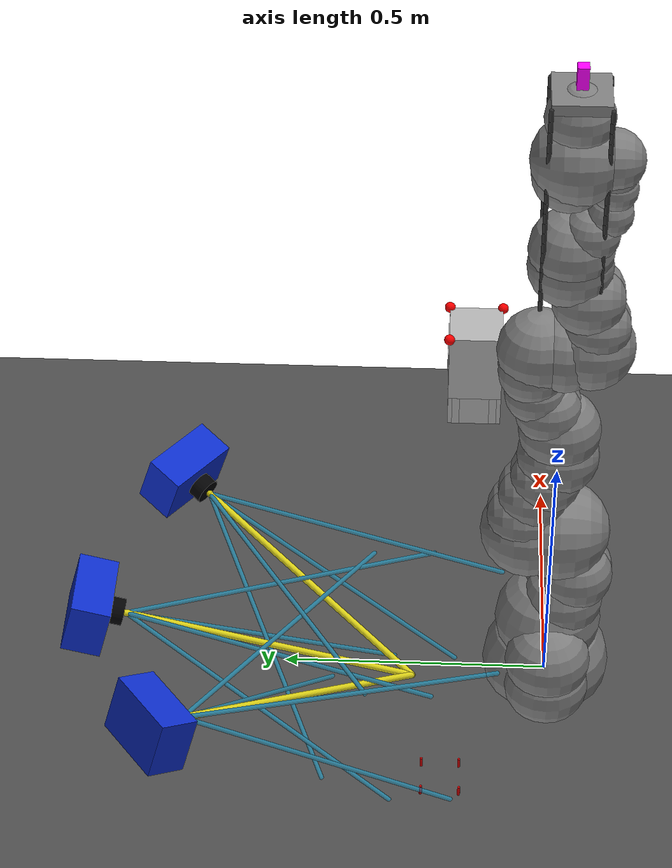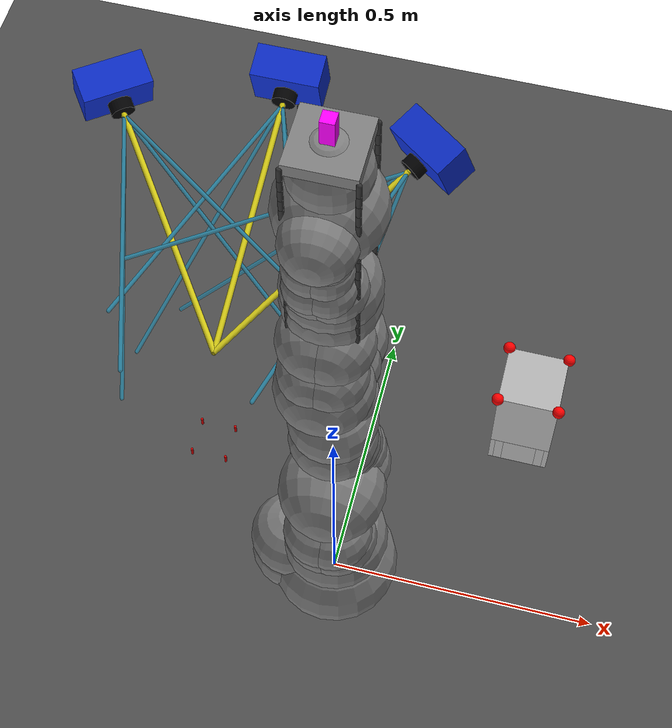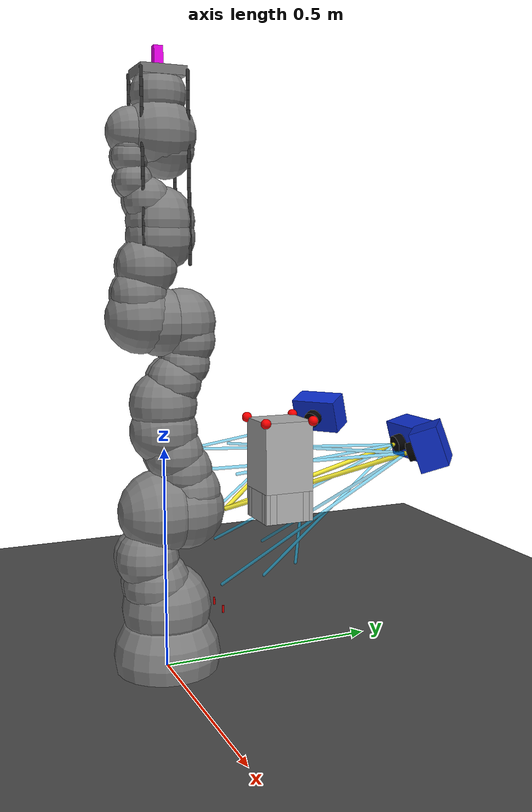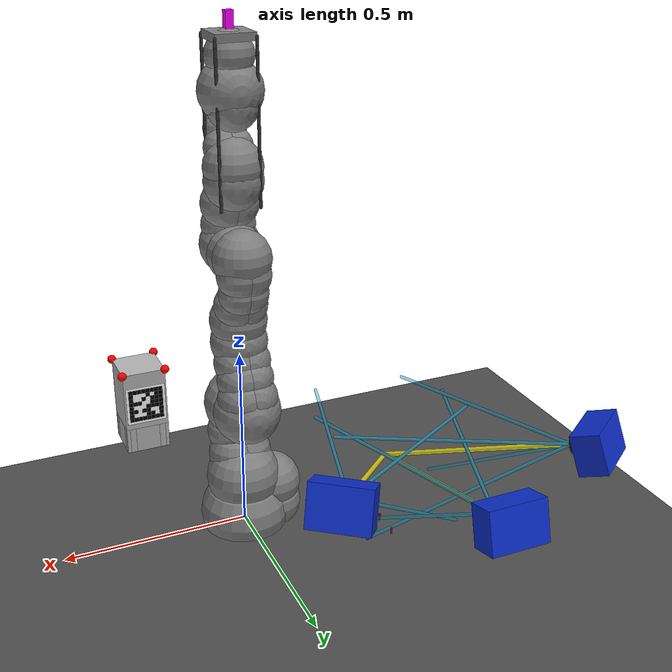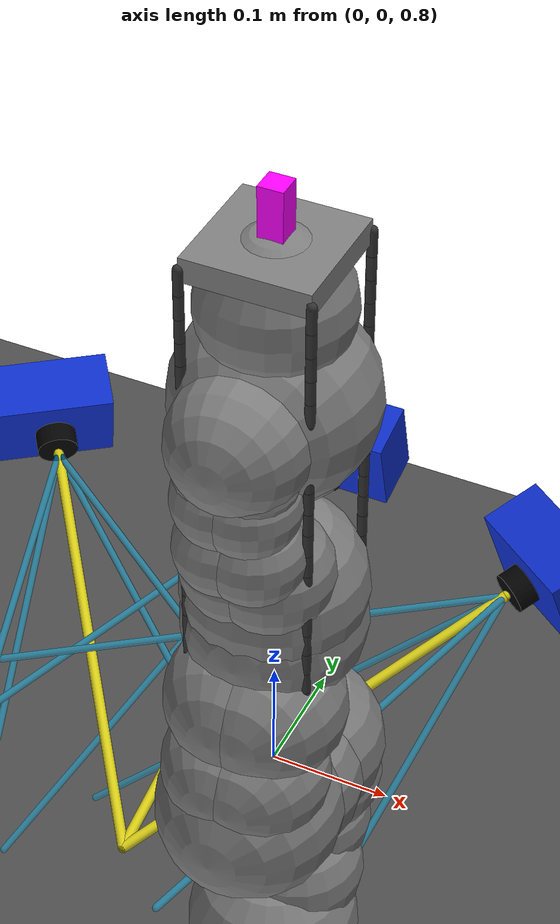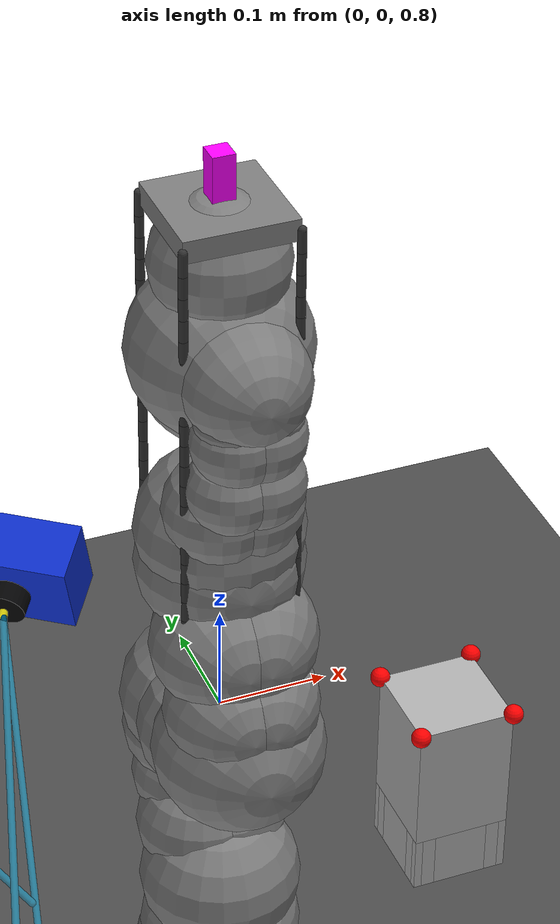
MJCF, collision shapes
<mujoco model="iiwa14_lifting_scene_sensors_compatible">

  <!-- arm + plate + ropes -->
  <include file="iiwa14_four_cables_with_plate.xml"/>

  <option integrator="implicitfast" gravity="0 0 -9.81"/>

  <asset>
    <material name="groundplane" rgba="0.3 0.3 0.3 1"/>
    <material name="concrete" rgba="0.7 0.7 0.7 1.0"/>
    <material name="target_mat" rgba="0.8 0.0 0.0 0.4"/>

    <!-- OpenCV vision marker assets -->
    <texture name="vision_marker_23_tex" type="2d" file="vision_marker_23.png"/>
    <material name="vision_marker_23_mat" texture="vision_marker_23_tex" texrepeat="1 1" texuniform="true" rgba="1 1 1 1"/>
    <material name="vision_marker_23_white_mat" rgba="1 1 1 1"/>
    <material name="vision_marker_23_black_mat" rgba="0 0 0 1"/>
    <!-- /OpenCV vision marker assets -->
    <material name="obstacle" rgba="0.9 0.45 0.1 1"/>
  </asset>

  <worldbody>
    <!-- lighting & ground -->
    <light pos="1.5 0 1.5" dir="1 0 -1" directional="true"/>
    <geom name="floor" size="0 0 0.05" type="plane" material="groundplane"/>

    <!-- RGB-D vision cameras -->
    <camera name="rgbd_front" pos="-0.3 0.82 0.42" quat="-0.000000 0.000000 0.610192 0.792253" fovy="52.000"/>
    <camera name="rgbd_left" pos="-0.62 0.68 0.46" quat="-0.257780 -0.181937 0.547176 0.775272" fovy="55.000"/>
    <camera name="rgbd_right" pos="0.02 0.68 0.46" quat="0.257780 0.181937 0.547176 0.775272" fovy="58.000"/>
    <!-- /RGB-D vision cameras -->

    <!-- RGB-D visible camera bodies -->
    <body name="rgbd_front_body" pos="-0.300000 0.820000 0.420000" quat="-0.000000 0.000000 0.610192 0.792253">
      <geom name="rgbd_front_housing" type="box" size="0.070 0.050 0.035" rgba="0.050 0.180 0.800 1" group="1" contype="0" conaffinity="0"/>
      <geom name="rgbd_front_lens" type="cylinder" size="0.024 0.012" pos="0 0 -0.048" rgba="0.010 0.010 0.014 1" group="1" contype="0" conaffinity="0"/>
      <geom name="rgbd_front_axis" type="capsule" fromto="0 0 -0.065 0 0 -0.587473" size="0.006" rgba="1.000 0.950 0.100 0.85" group="1" contype="0" conaffinity="0"/>
      <geom name="rgbd_front_ray_tl" type="capsule" fromto="0 0 -0.065 0.180838 0.135629 -0.587473" size="0.004" rgba="0.000 0.750 1.000 0.45" group="1" contype="0" conaffinity="0"/>
      <geom name="rgbd_front_ray_tr" type="capsule" fromto="0 0 -0.065 0.180838 -0.135629 -0.587473" size="0.004" rgba="0.000 0.750 1.000 0.45" group="1" contype="0" conaffinity="0"/>
      <geom name="rgbd_front_ray_bl" type="capsule" fromto="0 0 -0.065 -0.180838 0.135629 -0.587473" size="0.004" rgba="0.000 0.750 1.000 0.45" group="1" contype="0" conaffinity="0"/>
      <geom name="rgbd_front_ray_br" type="capsule" fromto="0 0 -0.065 -0.180838 -0.135629 -0.587473" size="0.004" rgba="0.000 0.750 1.000 0.45" group="1" contype="0" conaffinity="0"/>
    </body>
    <body name="rgbd_left_body" pos="-0.620000 0.680000 0.460000" quat="-0.257780 -0.181937 0.547176 0.775272">
      <geom name="rgbd_left_housing" type="box" size="0.070 0.050 0.035" rgba="0.050 0.180 0.800 1" group="1" contype="0" conaffinity="0"/>
      <geom name="rgbd_left_lens" type="cylinder" size="0.024 0.012" pos="0 0 -0.048" rgba="0.010 0.010 0.014 1" group="1" contype="0" conaffinity="0"/>
      <geom name="rgbd_left_axis" type="capsule" fromto="0 0 -0.065 0 0 -0.567172" size="0.006" rgba="1.000 0.950 0.100 0.85" group="1" contype="0" conaffinity="0"/>
      <geom name="rgbd_left_ray_tl" type="capsule" fromto="0 0 -0.065 0.185048 0.138786 -0.567172" size="0.004" rgba="0.000 0.750 1.000 0.45" group="1" contype="0" conaffinity="0"/>
      <geom name="rgbd_left_ray_tr" type="capsule" fromto="0 0 -0.065 0.185048 -0.138786 -0.567172" size="0.004" rgba="0.000 0.750 1.000 0.45" group="1" contype="0" conaffinity="0"/>
      <geom name="rgbd_left_ray_bl" type="capsule" fromto="0 0 -0.065 -0.185048 0.138786 -0.567172" size="0.004" rgba="0.000 0.750 1.000 0.45" group="1" contype="0" conaffinity="0"/>
      <geom name="rgbd_left_ray_br" type="capsule" fromto="0 0 -0.065 -0.185048 -0.138786 -0.567172" size="0.004" rgba="0.000 0.750 1.000 0.45" group="1" contype="0" conaffinity="0"/>
    </body>
    <body name="rgbd_right_body" pos="0.020000 0.680000 0.460000" quat="0.257780 0.181937 0.547176 0.775272">
      <geom name="rgbd_right_housing" type="box" size="0.070 0.050 0.035" rgba="0.050 0.180 0.800 1" group="1" contype="0" conaffinity="0"/>
      <geom name="rgbd_right_lens" type="cylinder" size="0.024 0.012" pos="0 0 -0.048" rgba="0.010 0.010 0.014 1" group="1" contype="0" conaffinity="0"/>
      <geom name="rgbd_right_axis" type="capsule" fromto="0 0 -0.065 0 0 -0.567172" size="0.006" rgba="1.000 0.950 0.100 0.85" group="1" contype="0" conaffinity="0"/>
      <geom name="rgbd_right_ray_tl" type="capsule" fromto="0 0 -0.065 0.195574 0.146681 -0.567172" size="0.004" rgba="0.000 0.750 1.000 0.45" group="1" contype="0" conaffinity="0"/>
      <geom name="rgbd_right_ray_tr" type="capsule" fromto="0 0 -0.065 0.195574 -0.146681 -0.567172" size="0.004" rgba="0.000 0.750 1.000 0.45" group="1" contype="0" conaffinity="0"/>
      <geom name="rgbd_right_ray_bl" type="capsule" fromto="0 0 -0.065 -0.195574 0.146681 -0.567172" size="0.004" rgba="0.000 0.750 1.000 0.45" group="1" contype="0" conaffinity="0"/>
      <geom name="rgbd_right_ray_br" type="capsule" fromto="0 0 -0.065 -0.195574 -0.146681 -0.567172" size="0.004" rgba="0.000 0.750 1.000 0.45" group="1" contype="0" conaffinity="0"/>
    </body>
    <!-- /RGB-D visible camera bodies -->

    <!-- target: visual-only goal marker (no collision) -->
    <body name="target" pos="-0.30288580108722774 0.19655506420279442 0">
      <geom name="rebar_0" type="cylinder" size="0.0025 0.01" pos="0.035 0.035 0.01" rgba="0.8 0.0 0.0 1.0" contype="1" conaffinity="1"/>
      <geom name="rebar_1" type="cylinder" size="0.0025 0.01" pos="0.035 -0.035 0.01" rgba="0.8 0.0 0.0 1.0" contype="1" conaffinity="1"/>
      <geom name="rebar_2" type="cylinder" size="0.0025 0.01" pos="-0.035 0.035 0.01" rgba="0.8 0.0 0.0 1.0" contype="1" conaffinity="1"/>
      <geom name="rebar_3" type="cylinder" size="0.0025 0.01" pos="-0.035 -0.035 0.01" rgba="0.8 0.0 0.0 1.0" contype="1" conaffinity="1"/>
    </body>

    <!-- prefab: payload with free joint -->
    <body name="prefab" pos="0.3 0.15 0.5">
      <joint type="free"/>
      <geom name="socket_top" type="box" size="0.05 0.05 0.070000" pos="0 0 0.030000" material="concrete" mass="0.213636"/>
      <geom name="socket_b1" type="box" size="0.004000 0.004000 0.030000" pos="-0.046000 -0.046000 -0.070000" material="concrete" mass="0.213636"/>
      <geom name="socket_b2" type="box" size="0.004000 0.007000 0.030000" pos="-0.046000 -0.035000 -0.070000" material="concrete" mass="0.213636"/>
      <geom name="socket_b3" type="box" size="0.004000 0.028000 0.030000" pos="-0.046000 0.000000 -0.070000" material="concrete" mass="0.213636"/>
      <geom name="socket_b4" type="box" size="0.004000 0.007000 0.030000" pos="-0.046000 0.035000 -0.070000" material="concrete" mass="0.213636"/>
      <geom name="socket_b5" type="box" size="0.004000 0.004000 0.030000" pos="-0.046000 0.046000 -0.070000" material="concrete" mass="0.213636"/>
      <geom name="socket_b6" type="box" size="0.007000 0.004000 0.030000" pos="-0.035000 -0.046000 -0.070000" material="concrete" mass="0.213636"/>
      <geom name="socket_b7" type="box" size="0.007000 0.028000 0.030000" pos="-0.035000 0.000000 -0.070000" material="concrete" mass="0.213636"/>
      <geom name="socket_b8" type="box" size="0.007000 0.004000 0.030000" pos="-0.035000 0.046000 -0.070000" material="concrete" mass="0.213636"/>
      <geom name="socket_b9" type="box" size="0.028000 0.004000 0.030000" pos="0.000000 -0.046000 -0.070000" material="concrete" mass="0.213636"/>
      <geom name="socket_b10" type="box" size="0.028000 0.007000 0.030000" pos="0.000000 -0.035000 -0.070000" material="concrete" mass="0.213636"/>
      <geom name="socket_b11" type="box" size="0.028000 0.028000 0.030000" pos="0.000000 0.000000 -0.070000" material="concrete" mass="0.213636"/>
      <geom name="socket_b12" type="box" size="0.028000 0.007000 0.030000" pos="0.000000 0.035000 -0.070000" material="concrete" mass="0.213636"/>
      <geom name="socket_b13" type="box" size="0.028000 0.004000 0.030000" pos="0.000000 0.046000 -0.070000" material="concrete" mass="0.213636"/>
      <geom name="socket_b14" type="box" size="0.007000 0.004000 0.030000" pos="0.035000 -0.046000 -0.070000" material="concrete" mass="0.213636"/>
      <geom name="socket_b15" type="box" size="0.007000 0.028000 0.030000" pos="0.035000 0.000000 -0.070000" material="concrete" mass="0.213636"/>
      <geom name="socket_b16" type="box" size="0.007000 0.004000 0.030000" pos="0.035000 0.046000 -0.070000" material="concrete" mass="0.213636"/>
      <geom name="socket_b17" type="box" size="0.004000 0.004000 0.030000" pos="0.046000 -0.046000 -0.070000" material="concrete" mass="0.213636"/>
      <geom name="socket_b18" type="box" size="0.004000 0.007000 0.030000" pos="0.046000 -0.035000 -0.070000" material="concrete" mass="0.213636"/>
      <geom name="socket_b19" type="box" size="0.004000 0.028000 0.030000" pos="0.046000 0.000000 -0.070000" material="concrete" mass="0.213636"/>
      <geom name="socket_b20" type="box" size="0.004000 0.007000 0.030000" pos="0.046000 0.035000 -0.070000" material="concrete" mass="0.213636"/>
      <geom name="socket_b21" type="box" size="0.004000 0.004000 0.030000" pos="0.046000 0.046000 -0.070000" material="concrete" mass="0.213636"/>
      <geom name="vision_marker_23_board" type="box" size="0.046000 0.046000 0.000500" pos="0.000000 0.051500 0.020000" quat="0.000000 0.000000 0.707107 0.707107" material="vision_marker_23_white_mat" contype="0" conaffinity="0" mass="0.00000001"/>
      <geom name="vision_marker_23_blk_0_0" type="box" size="0.005000 0.005000 0.000120" pos="0.035000 0.052120 0.055000" quat="0.000000 0.000000 0.707107 0.707107" material="vision_marker_23_black_mat" contype="0" conaffinity="0" mass="0.00000001"/>
      <geom name="vision_marker_23_blk_0_1" type="box" size="0.005000 0.005000 0.000120" pos="0.025000 0.052120 0.055000" quat="0.000000 0.000000 0.707107 0.707107" material="vision_marker_23_black_mat" contype="0" conaffinity="0" mass="0.00000001"/>
      <geom name="vision_marker_23_blk_0_2" type="box" size="0.005000 0.005000 0.000120" pos="0.015000 0.052120 0.055000" quat="0.000000 0.000000 0.707107 0.707107" material="vision_marker_23_black_mat" contype="0" conaffinity="0" mass="0.00000001"/>
      <geom name="vision_marker_23_blk_0_3" type="box" size="0.005000 0.005000 0.000120" pos="0.005000 0.052120 0.055000" quat="0.000000 0.000000 0.707107 0.707107" material="vision_marker_23_black_mat" contype="0" conaffinity="0" mass="0.00000001"/>
      <geom name="vision_marker_23_blk_0_4" type="box" size="0.005000 0.005000 0.000120" pos="-0.005000 0.052120 0.055000" quat="0.000000 0.000000 0.707107 0.707107" material="vision_marker_23_black_mat" contype="0" conaffinity="0" mass="0.00000001"/>
      <geom name="vision_marker_23_blk_0_5" type="box" size="0.005000 0.005000 0.000120" pos="-0.015000 0.052120 0.055000" quat="0.000000 0.000000 0.707107 0.707107" material="vision_marker_23_black_mat" contype="0" conaffinity="0" mass="0.00000001"/>
      <geom name="vision_marker_23_blk_0_6" type="box" size="0.005000 0.005000 0.000120" pos="-0.025000 0.052120 0.055000" quat="0.000000 0.000000 0.707107 0.707107" material="vision_marker_23_black_mat" contype="0" conaffinity="0" mass="0.00000001"/>
      <geom name="vision_marker_23_blk_0_7" type="box" size="0.005000 0.005000 0.000120" pos="-0.035000 0.052120 0.055000" quat="0.000000 0.000000 0.707107 0.707107" material="vision_marker_23_black_mat" contype="0" conaffinity="0" mass="0.00000001"/>
      <geom name="vision_marker_23_blk_1_0" type="box" size="0.005000 0.005000 0.000120" pos="0.035000 0.052120 0.045000" quat="0.000000 0.000000 0.707107 0.707107" material="vision_marker_23_black_mat" contype="0" conaffinity="0" mass="0.00000001"/>
      <geom name="vision_marker_23_blk_1_4" type="box" size="0.005000 0.005000 0.000120" pos="-0.005000 0.052120 0.045000" quat="0.000000 0.000000 0.707107 0.707107" material="vision_marker_23_black_mat" contype="0" conaffinity="0" mass="0.00000001"/>
      <geom name="vision_marker_23_blk_1_6" type="box" size="0.005000 0.005000 0.000120" pos="-0.025000 0.052120 0.045000" quat="0.000000 0.000000 0.707107 0.707107" material="vision_marker_23_black_mat" contype="0" conaffinity="0" mass="0.00000001"/>
      <geom name="vision_marker_23_blk_1_7" type="box" size="0.005000 0.005000 0.000120" pos="-0.035000 0.052120 0.045000" quat="0.000000 0.000000 0.707107 0.707107" material="vision_marker_23_black_mat" contype="0" conaffinity="0" mass="0.00000001"/>
      <geom name="vision_marker_23_blk_2_0" type="box" size="0.005000 0.005000 0.000120" pos="0.035000 0.052120 0.035000" quat="0.000000 0.000000 0.707107 0.707107" material="vision_marker_23_black_mat" contype="0" conaffinity="0" mass="0.00000001"/>
      <geom name="vision_marker_23_blk_2_3" type="box" size="0.005000 0.005000 0.000120" pos="0.005000 0.052120 0.035000" quat="0.000000 0.000000 0.707107 0.707107" material="vision_marker_23_black_mat" contype="0" conaffinity="0" mass="0.00000001"/>
      <geom name="vision_marker_23_blk_2_5" type="box" size="0.005000 0.005000 0.000120" pos="-0.015000 0.052120 0.035000" quat="0.000000 0.000000 0.707107 0.707107" material="vision_marker_23_black_mat" contype="0" conaffinity="0" mass="0.00000001"/>
      <geom name="vision_marker_23_blk_2_6" type="box" size="0.005000 0.005000 0.000120" pos="-0.025000 0.052120 0.035000" quat="0.000000 0.000000 0.707107 0.707107" material="vision_marker_23_black_mat" contype="0" conaffinity="0" mass="0.00000001"/>
      <geom name="vision_marker_23_blk_2_7" type="box" size="0.005000 0.005000 0.000120" pos="-0.035000 0.052120 0.035000" quat="0.000000 0.000000 0.707107 0.707107" material="vision_marker_23_black_mat" contype="0" conaffinity="0" mass="0.00000001"/>
      <geom name="vision_marker_23_blk_3_0" type="box" size="0.005000 0.005000 0.000120" pos="0.035000 0.052120 0.025000" quat="0.000000 0.000000 0.707107 0.707107" material="vision_marker_23_black_mat" contype="0" conaffinity="0" mass="0.00000001"/>
      <geom name="vision_marker_23_blk_3_1" type="box" size="0.005000 0.005000 0.000120" pos="0.025000 0.052120 0.025000" quat="0.000000 0.000000 0.707107 0.707107" material="vision_marker_23_black_mat" contype="0" conaffinity="0" mass="0.00000001"/>
      <geom name="vision_marker_23_blk_3_2" type="box" size="0.005000 0.005000 0.000120" pos="0.015000 0.052120 0.025000" quat="0.000000 0.000000 0.707107 0.707107" material="vision_marker_23_black_mat" contype="0" conaffinity="0" mass="0.00000001"/>
      <geom name="vision_marker_23_blk_3_5" type="box" size="0.005000 0.005000 0.000120" pos="-0.015000 0.052120 0.025000" quat="0.000000 0.000000 0.707107 0.707107" material="vision_marker_23_black_mat" contype="0" conaffinity="0" mass="0.00000001"/>
      <geom name="vision_marker_23_blk_3_6" type="box" size="0.005000 0.005000 0.000120" pos="-0.025000 0.052120 0.025000" quat="0.000000 0.000000 0.707107 0.707107" material="vision_marker_23_black_mat" contype="0" conaffinity="0" mass="0.00000001"/>
      <geom name="vision_marker_23_blk_3_7" type="box" size="0.005000 0.005000 0.000120" pos="-0.035000 0.052120 0.025000" quat="0.000000 0.000000 0.707107 0.707107" material="vision_marker_23_black_mat" contype="0" conaffinity="0" mass="0.00000001"/>
      <geom name="vision_marker_23_blk_4_0" type="box" size="0.005000 0.005000 0.000120" pos="0.035000 0.052120 0.015000" quat="0.000000 0.000000 0.707107 0.707107" material="vision_marker_23_black_mat" contype="0" conaffinity="0" mass="0.00000001"/>
      <geom name="vision_marker_23_blk_4_4" type="box" size="0.005000 0.005000 0.000120" pos="-0.005000 0.052120 0.015000" quat="0.000000 0.000000 0.707107 0.707107" material="vision_marker_23_black_mat" contype="0" conaffinity="0" mass="0.00000001"/>
      <geom name="vision_marker_23_blk_4_5" type="box" size="0.005000 0.005000 0.000120" pos="-0.015000 0.052120 0.015000" quat="0.000000 0.000000 0.707107 0.707107" material="vision_marker_23_black_mat" contype="0" conaffinity="0" mass="0.00000001"/>
      <geom name="vision_marker_23_blk_4_6" type="box" size="0.005000 0.005000 0.000120" pos="-0.025000 0.052120 0.015000" quat="0.000000 0.000000 0.707107 0.707107" material="vision_marker_23_black_mat" contype="0" conaffinity="0" mass="0.00000001"/>
      <geom name="vision_marker_23_blk_4_7" type="box" size="0.005000 0.005000 0.000120" pos="-0.035000 0.052120 0.015000" quat="0.000000 0.000000 0.707107 0.707107" material="vision_marker_23_black_mat" contype="0" conaffinity="0" mass="0.00000001"/>
      <geom name="vision_marker_23_blk_5_0" type="box" size="0.005000 0.005000 0.000120" pos="0.035000 0.052120 0.005000" quat="0.000000 0.000000 0.707107 0.707107" material="vision_marker_23_black_mat" contype="0" conaffinity="0" mass="0.00000001"/>
      <geom name="vision_marker_23_blk_5_1" type="box" size="0.005000 0.005000 0.000120" pos="0.025000 0.052120 0.005000" quat="0.000000 0.000000 0.707107 0.707107" material="vision_marker_23_black_mat" contype="0" conaffinity="0" mass="0.00000001"/>
      <geom name="vision_marker_23_blk_5_3" type="box" size="0.005000 0.005000 0.000120" pos="0.005000 0.052120 0.005000" quat="0.000000 0.000000 0.707107 0.707107" material="vision_marker_23_black_mat" contype="0" conaffinity="0" mass="0.00000001"/>
      <geom name="vision_marker_23_blk_5_4" type="box" size="0.005000 0.005000 0.000120" pos="-0.005000 0.052120 0.005000" quat="0.000000 0.000000 0.707107 0.707107" material="vision_marker_23_black_mat" contype="0" conaffinity="0" mass="0.00000001"/>
      <geom name="vision_marker_23_blk_5_7" type="box" size="0.005000 0.005000 0.000120" pos="-0.035000 0.052120 0.005000" quat="0.000000 0.000000 0.707107 0.707107" material="vision_marker_23_black_mat" contype="0" conaffinity="0" mass="0.00000001"/>
      <geom name="vision_marker_23_blk_6_0" type="box" size="0.005000 0.005000 0.000120" pos="0.035000 0.052120 -0.005000" quat="0.000000 0.000000 0.707107 0.707107" material="vision_marker_23_black_mat" contype="0" conaffinity="0" mass="0.00000001"/>
      <geom name="vision_marker_23_blk_6_4" type="box" size="0.005000 0.005000 0.000120" pos="-0.005000 0.052120 -0.005000" quat="0.000000 0.000000 0.707107 0.707107" material="vision_marker_23_black_mat" contype="0" conaffinity="0" mass="0.00000001"/>
      <geom name="vision_marker_23_blk_6_5" type="box" size="0.005000 0.005000 0.000120" pos="-0.015000 0.052120 -0.005000" quat="0.000000 0.000000 0.707107 0.707107" material="vision_marker_23_black_mat" contype="0" conaffinity="0" mass="0.00000001"/>
      <geom name="vision_marker_23_blk_6_7" type="box" size="0.005000 0.005000 0.000120" pos="-0.035000 0.052120 -0.005000" quat="0.000000 0.000000 0.707107 0.707107" material="vision_marker_23_black_mat" contype="0" conaffinity="0" mass="0.00000001"/>
      <geom name="vision_marker_23_blk_7_0" type="box" size="0.005000 0.005000 0.000120" pos="0.035000 0.052120 -0.015000" quat="0.000000 0.000000 0.707107 0.707107" material="vision_marker_23_black_mat" contype="0" conaffinity="0" mass="0.00000001"/>
      <geom name="vision_marker_23_blk_7_1" type="box" size="0.005000 0.005000 0.000120" pos="0.025000 0.052120 -0.015000" quat="0.000000 0.000000 0.707107 0.707107" material="vision_marker_23_black_mat" contype="0" conaffinity="0" mass="0.00000001"/>
      <geom name="vision_marker_23_blk_7_2" type="box" size="0.005000 0.005000 0.000120" pos="0.015000 0.052120 -0.015000" quat="0.000000 0.000000 0.707107 0.707107" material="vision_marker_23_black_mat" contype="0" conaffinity="0" mass="0.00000001"/>
      <geom name="vision_marker_23_blk_7_3" type="box" size="0.005000 0.005000 0.000120" pos="0.005000 0.052120 -0.015000" quat="0.000000 0.000000 0.707107 0.707107" material="vision_marker_23_black_mat" contype="0" conaffinity="0" mass="0.00000001"/>
      <geom name="vision_marker_23_blk_7_4" type="box" size="0.005000 0.005000 0.000120" pos="-0.005000 0.052120 -0.015000" quat="0.000000 0.000000 0.707107 0.707107" material="vision_marker_23_black_mat" contype="0" conaffinity="0" mass="0.00000001"/>
      <geom name="vision_marker_23_blk_7_5" type="box" size="0.005000 0.005000 0.000120" pos="-0.015000 0.052120 -0.015000" quat="0.000000 0.000000 0.707107 0.707107" material="vision_marker_23_black_mat" contype="0" conaffinity="0" mass="0.00000001"/>
      <geom name="vision_marker_23_blk_7_6" type="box" size="0.005000 0.005000 0.000120" pos="-0.025000 0.052120 -0.015000" quat="0.000000 0.000000 0.707107 0.707107" material="vision_marker_23_black_mat" contype="0" conaffinity="0" mass="0.00000001"/>
      <geom name="vision_marker_23_blk_7_7" type="box" size="0.005000 0.005000 0.000120" pos="-0.035000 0.052120 -0.015000" quat="0.000000 0.000000 0.707107 0.707107" material="vision_marker_23_black_mat" contype="0" conaffinity="0" mass="0.00000001"/>

      <!-- four lift sites at top corners -->
      <site name="lift_fl" pos=" 0.05  0.05  0.1" size="0.01" rgba="1 0 0 1"/>
      <site name="lift_fr" pos=" 0.05 -0.05  0.1" size="0.01" rgba="1 0 0 1"/>
      <site name="lift_rl" pos="-0.05  0.05  0.1" size="0.01" rgba="1 0 0 1"/>
      <site name="lift_rr" pos="-0.05 -0.05  0.1" size="0.01" rgba="1 0 0 1"/>

      <!-- IMU sensor mount -->
      <site name="imu_site" pos="0 0 0" size="0.01" rgba="0 1 0 1"/>
    </body>
  </worldbody>

  <actuator>
    <position name="j1_motor" joint="joint1" ctrlrange="-2.96 2.96" forcerange="-300 300" kp="3000" kv="100"/>
    <position name="j2_motor" joint="joint2" ctrlrange="-2.09 2.09" forcerange="-300 300" kp="3000" kv="100"/>
    <position name="j3_motor" joint="joint3" ctrlrange="-2.96 2.96" forcerange="-300 300" kp="3000" kv="100"/>
    <position name="j4_motor" joint="joint4" ctrlrange="-2.09 2.09" forcerange="-300 300" kp="3000" kv="100"/>
    <position name="j5_motor" joint="joint5" ctrlrange="-2.96 2.96" forcerange="-300 300" kp="3000" kv="100"/>
    <position name="j6_motor" joint="joint6" ctrlrange="-2.09 2.09" forcerange="-300 300" kp="3000" kv="100"/>
    <position name="j7_motor" joint="joint7" ctrlrange="-3.05 3.05" forcerange="-300 300" kp="3000" kv="100"/>
  </actuator>

  <equality>
      <!-- rope ends to prefab lift sites (fl/rl swapped with fr/rr) -->
      <connect site1="rope_fl_end" site2="lift_fr"/>
      <connect site1="rope_fr_end" site2="lift_fl"/>
      <connect site1="rope_rl_end" site2="lift_rr"/>
      <connect site1="rope_rr_end" site2="lift_rl"/>
  </equality>

  <sensor>
    <framepos name="prefab/pos" objtype="site" objname="imu_site"/>
    <framelinvel name="prefab/vel" objtype="site" objname="imu_site"/>
    <framepos name="end/pos" objtype="site" objname="attachment_site"/>
    <framelinvel name="end/vel" objtype="site" objname="attachment_site"/>
  </sensor>

  <!-- Full nq vector: arm home + rope ball joints + prefab free joint -->
  <keyframe>
    <key name="home" qpos="-0.71972016 0.29057466 -1.10685585 1.53851657 2.87907443 1.73055121 -1.85194252 1 0 0 0 1 0 0 0 1 0 0 0 1 0 0 0 1 0 0 0 1 0 0 0 1 0 0 0 1 0 0 0 1 0 0 0 1 0 0 0 1 0 0 0 1 0 0 0 1 0 0 0 1 0 0 0 1 0 0 0 1 0 0 0 1 0 0 0 1 0 0 0 1 0 0 0 1 0 0 0 1 0 0 0 1 0 0 0 1 0 0 0 1 0 0 0 1 0 0 0 1 0 0 0 1 0 0 0 1 0 0 0 1 0 0 0 1 0 0 0 1 0 0 0 1 0 0 0 1 0 0 0 1 0 0 0 1 0 0 0 1 0 0 0 1 0 0 0 1 0 0 0 1 0 0 0 1 0 0 0 0.2 0.3 0.5 1 0 0 0"/>
  </keyframe>

</mujoco>

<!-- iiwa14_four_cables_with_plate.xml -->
<mujoco model="iiwa14">
  <compiler angle="radian" meshdir="assets" autolimits="true"/>
  <option integrator="implicitfast"/>

  <default>
    <default class="iiwa">
      <material specular="0.5" shininess="0.25"/>
      <joint axis="0 0 1" damping="1.2"/>
      <general gaintype="fixed" biastype="affine" gainprm="0" biasprm="0 -50 -5"/>
      <default class="joint1">
        <joint range="-2.96706 2.96706"/>
        <general ctrlrange="-2.96706 2.96706"/>
        <default class="joint2">
          <joint range="-2.0944 2.0944"/>
          <general ctrlrange="-2.0944 2.0944"/>
        </default>
      </default>
      <default class="joint3">
        <joint range="-3.05433 3.05433"/>
        <general ctrlrange="-3.05433 3.05433"/>
      </default>
      <default class="visual">
        <geom type="mesh" contype="0" conaffinity="0" group="2" material="gray"/>
      </default>
      <default class="collision">
        <geom group="3"/>
      </default>
      <site size="0.001" rgba="1 0 0 1" group="4"/>
    </default>
  </default>

  <asset>
    <material class="iiwa" name="gray" rgba="0.4 0.4 0.4 1"/>
    <material class="iiwa" name="light_gray" rgba="0.6 0.6 0.6 1"/>
    <material class="iiwa" name="black" rgba="0 0 0 1"/>
    <material class="iiwa" name="orange" rgba="1 0.423529 0.0392157 1"/>
    <material name="rope" rgba="0.2 0.2 0.2 1"/>

    <mesh file="link_0.obj"/>
    <mesh file="link_1.obj"/>
    <mesh file="link_2_orange.obj"/>
    <mesh file="link_2_grey.obj"/>
    <mesh file="link_3.obj"/>
    <mesh file="band.obj"/>
    <mesh file="kuka.obj"/>
    <mesh file="link_4_orange.obj"/>
    <mesh file="link_4_grey.obj"/>
    <mesh file="link_5.obj"/>
    <mesh file="link_6_orange.obj"/>
    <mesh file="link_6_grey.obj"/>
    <mesh file="link_7.obj"/>
  </asset>

  <worldbody>
    <light name="top" pos="0 0 2" mode="trackcom"/>
    <body name="base" childclass="iiwa">
      <inertial mass="5" pos="-0.1 0 0.07" diaginertia="0.05 0.06 0.03"/>
      <geom class="visual" mesh="link_0"/>
      <geom class="collision" size="0.12" pos="0 0 0.03"/>
      <geom class="collision" size="0.08" pos="-0.08 0 0.103"/>
      <geom class="collision" size="0.08" pos="-0.08 0 0.04"/>
      <geom class="collision" size="0.1" pos="0 0 0.14"/>
      <body name="link1" pos="0 0 0.1575">
        <inertial mass="5.76" pos="0 -0.03 0.12" diaginertia="0.0333 0.033 0.0123"/>
        <joint name="joint1" class="joint1"/>
        <geom class="visual" mesh="link_1"/>
        <geom class="collision" size="0.08" pos="0 0 -0.0005"/>
        <geom class="collision" size="0.075" pos="0.01 -0.025 0.0425"/>
        <geom class="collision" size="0.075" pos="-0.01 -0.025 0.0425"/>
        <geom class="collision" size="0.07" pos="0.01 -0.045 0.1025"/>
        <geom class="collision" size="0.07" pos="-0.01 -0.045 0.1025"/>
        <body name="link2" pos="0 0 0.2025" quat="0 0 1 1">
          <inertial mass="6.35" pos="0.0003 0.059 0.042" diaginertia="0.0305 0.0304 0.011" quat="0 0 1 1"/>
          <joint name="joint2" class="joint2"/>
          <geom class="visual" material="orange" mesh="link_2_orange"/>
          <geom class="visual" mesh="link_2_grey"/>
          <geom class="collision" size="0.095" pos="0 0 -0.01"/>
          <geom class="collision" size="0.09" pos="0 0 0.045"/>
          <geom class="collision" size="0.07" pos="-0.01 0.04 0.054"/>
          <geom class="collision" size="0.065" pos="-0.01 0.09 0.04"/>
          <geom class="collision" size="0.065" pos="-0.01 0.13 0.02"/>
          <geom class="collision" size="0.07" pos="0.01 0.04 0.054"/>
          <geom class="collision" size="0.065" pos="0.01 0.09 0.04"/>
          <geom class="collision" size="0.065" pos="0.01 0.13 0.02"/>
          <geom class="collision" size="0.075" pos="0 0.18 0"/>
          <body name="link3" pos="0 0.2045 0" quat="0 0 1 1">
            <inertial mass="3.5" pos="0 0.03 0.13" diaginertia="0.025 0.0238 0.0076"/>
            <joint name="joint3" class="joint1"/>
            <geom class="visual" mesh="link_3"/>
            <geom class="visual" material="light_gray" mesh="band"/>
            <geom class="visual" material="black" mesh="kuka"/>
            <geom class="collision" size="0.075" pos="0 0 0.0355"/>
            <geom class="collision" size="0.06" pos="0.01 0.023 0.0855"/>
            <geom class="collision" size="0.055" pos="0.01 0.048 0.1255"/>
            <geom class="collision" size="0.06" pos="0.01 0.056 0.1755"/>
            <geom class="collision" size="0.06" pos="-0.01 0.023 0.0855"/>
            <geom class="collision" size="0.055" pos="-0.01 0.048 0.1255"/>
            <geom class="collision" size="0.06" pos="-0.01 0.056 0.1755"/>
            <geom class="collision" size="0.075" pos="0 0.045 0.2155"/>
            <geom class="collision" size="0.075" pos="0 0 0.2155"/>
            <body name="link4" pos="0 0 0.2155" quat="1 1 0 0">
              <inertial mass="3.5" pos="0 0.067 0.034" diaginertia="0.017 0.0164 0.006" quat="1 1 0 0"/>
              <joint name="joint4" class="joint2"/>
              <geom class="visual" material="orange" mesh="link_4_orange"/>
              <geom class="visual" mesh="link_4_grey"/>
              <geom class="collision" size="0.078" pos="0 0.01 0.046"/>
              <geom class="collision" size="0.06" pos="0.01 0.06 0.052"/>
              <geom class="collision" size="0.065" pos="0.01 0.12 0.034"/>
              <geom class="collision" size="0.06" pos="-0.01 0.06 0.052"/>
              <geom class="collision" size="0.065" pos="-0.01 0.12 0.034"/>
              <geom class="collision" size="0.075" pos="0 0.184 0"/>
              <body name="link5" pos="0 0.1845 0" quat="0 0 1 1">
                <inertial mass="3.5" pos="0.0001 0.021 0.076" diaginertia="0.01 0.0087 0.00449"/>
                <joint name="joint5" class="joint1"/>
                <geom class="visual" mesh="link_5"/>
                <geom class="visual" material="light_gray" mesh="band"/>
                <geom class="visual" material="black" mesh="kuka"/>
                <geom class="collision" size="0.075" pos="0 0 0.0335"/>
                <geom class="collision" size="0.05" pos="-0.012 0.031 0.0755"/>
                <geom class="collision" size="0.05" pos="0.012 0.031 0.0755"/>
                <geom class="collision" size="0.04" pos="-0.012 0.06 0.1155"/>
                <geom class="collision" size="0.04" pos="0.012 0.06 0.1155"/>
                <geom class="collision" size="0.04" pos="-0.01 0.065 0.1655"/>
                <geom class="collision" size="0.04" pos="0.01 0.065 0.1655"/>
                <geom class="collision" size="0.035" pos="-0.012 0.065 0.1855"/>
                <geom class="collision" size="0.035" pos="0.012 0.065 0.1855"/>
                <body name="link6" pos="0 0 0.2155" quat="1 1 0 0">
                  <inertial mass="1.8" pos="0 0.0006 0.0004" diaginertia="0.0049 0.0047 0.0036" quat="1 1 0 0"/>
                  <joint name="joint6" class="joint2"/>
                  <geom class="visual" material="orange" mesh="link_6_orange"/>
                  <geom class="visual" mesh="link_6_grey"/>
                  <geom class="collision" size="0.055" pos="0 0 -0.059"/>
                  <geom class="collision" size="0.065" pos="0 -0.03 0.011"/>
                  <geom class="collision" size="0.08"/>
                  <body name="link7" pos="0 0.081 0" quat="0 0 1 1">
                    <inertial mass="1.2" pos="0 0 0.02" diaginertia="0.001 0.001 0.001"/>
                    <joint name="joint7" class="joint3"/>
                    <geom class="visual" mesh="link_7"/>
                    <geom class="collision" size="0.06" pos="0 0 0.001"/>
                    <site pos="0 0 0.045" name="attachment_site" size="0.01" rgba="0 1 1 1" type="sphere" group="1"/>

                    <!-- end-effector payload plate + rigid cables -->
                    <body name="hook_attachment" pos="0 0 0.045">
                      <geom type="box" size="0.05 0.05 0.01" pos="0 0 0"
                            rgba="0.5 0.5 0.5 0.8" mass="0.1"/>
                      <site name="hook_fl" pos="0.05 0.05 0.05" size="0.01" rgba="0 0 1 1"/>
                      <site name="hook_fr" pos="0.05 -0.05 0.05" size="0.01" rgba="0 0 1 1"/>
                      <site name="hook_rl" pos="-0.05 0.05 0.05" size="0.01" rgba="0 0 1 1"/>
                      <site name="hook_rr" pos="-0.05 -0.05 0.05" size="0.01" rgba="0 0 1 1"/>
                      <camera name="end_effector_cam"
                              pos="0 0 0"
                              xyaxes="1 0 0  0 1 0"
                              fovy="60"/>
                      <body name="rope_fl_root" pos="0.05 0.05 0">
                        <joint type="ball" damping="0.02"/>
                        <geom type="capsule"
                              fromto="0 0 0   0 0 -0.020000"
                              size="0.004000"
                              mass="0.01"
                              material="rope"/>

                        <body name="rope_fl_1" pos="0 0 -0.020000">
                          <geom type="capsule" fromto="0 0 0   0 0 -0.020000"
                                size="0.004000" mass="0.01" material="rope"/>
                          <joint type="ball" damping="0.02"/>

                          <body name="rope_fl_2" pos="0 0 -0.020000">
                            <geom type="capsule" fromto="0 0 0   0 0 -0.020000"
                                  size="0.004000" mass="0.01" material="rope"/>
                            <joint type="ball" damping="0.02"/>

                            <body name="rope_fl_3" pos="0 0 -0.020000">
                              <geom type="capsule" fromto="0 0 0   0 0 -0.020000"
                                    size="0.004000" mass="0.01" material="rope"/>
                              <joint type="ball" damping="0.02"/>

                              <body name="rope_fl_4" pos="0 0 -0.020000">
                                <geom type="capsule" fromto="0 0 0   0 0 -0.020000"
                                      size="0.004000" mass="0.01" material="rope"/>
                                <joint type="ball" damping="0.02"/>

                                <body name="rope_fl_5" pos="0 0 -0.020000">
                                  <geom type="capsule" fromto="0 0 0   0 0 -0.020000"
                                        size="0.004000" mass="0.01" material="rope"/>
                                  <joint type="ball" damping="0.02"/>

                                  <body name="rope_fl_6" pos="0 0 -0.020000">
                                    <geom type="capsule" fromto="0 0 0   0 0 -0.020000"
                                          size="0.004000" mass="0.01" material="rope"/>
                                    <joint type="ball" damping="0.02"/>

                                    <body name="rope_fl_7" pos="0 0 -0.020000">
                                      <geom type="capsule" fromto="0 0 0   0 0 -0.020000"
                                            size="0.004000" mass="0.01" material="rope"/>
                                      <joint type="ball" damping="0.02"/>

                                      <body name="rope_fl_8" pos="0 0 -0.020000">
                                        <geom type="capsule" fromto="0 0 0   0 0 -0.020000"
                                              size="0.004000" mass="0.01" material="rope"/>
                                        <joint type="ball" damping="0.02"/>

                                        <body name="rope_fl_9" pos="0 0 -0.020000">
                                          <geom type="capsule" fromto="0 0 0   0 0 -0.020000"
                                                size="0.004000" mass="0.01" material="rope"/>
                                          <joint type="ball" damping="0.02"/>

                                          <body name="rope_fl_10" pos="0 0 -0.020000">
                                            <geom type="capsule" fromto="0 0 0   0 0 -0.020000"
                                                  size="0.004000" mass="0.01" material="rope"/>
                                            <joint type="ball" damping="0.02"/>

                                            <body name="rope_fl_11" pos="0 0 -0.020000">
                                              <geom type="capsule" fromto="0 0 0   0 0 -0.020000"
                                                    size="0.004000" mass="0.01" material="rope"/>
                                              <joint type="ball" damping="0.02"/>

                                              <body name="rope_fl_12" pos="0 0 -0.020000">
                                                <geom type="capsule" fromto="0 0 0   0 0 -0.020000"
                                                      size="0.004000" mass="0.01" material="rope"/>
                                                <joint type="ball" damping="0.02"/>

                                                <body name="rope_fl_13" pos="0 0 -0.020000">
                                                  <geom type="capsule" fromto="0 0 0   0 0 -0.020000"
                                                        size="0.004000" mass="0.01" material="rope"/>
                                                  <joint type="ball" damping="0.02"/>

                                                  <body name="rope_fl_14" pos="0 0 -0.020000">
                                                    <geom type="capsule" fromto="0 0 0   0 0 -0.020000"
                                                          size="0.004000" mass="0.01" material="rope"/>
                                                    <joint type="ball" damping="0.02"/>

                                                    <body name="rope_fl_15" pos="0 0 -0.020000">
                                                      <geom type="capsule" fromto="0 0 0   0 0 -0.020000"
                                                            size="0.004000" mass="0.01" material="rope"/>
                                                      <joint type="ball" damping="0.02"/>

                                                      <body name="rope_fl_16" pos="0 0 -0.020000">
                                                        <geom type="capsule" fromto="0 0 0   0 0 -0.020000"
                                                              size="0.004000" mass="0.01" material="rope"/>
                                                        <joint type="ball" damping="0.02"/>

                                                        <body name="rope_fl_17" pos="0 0 -0.020000">
                                                          <geom type="capsule" fromto="0 0 0   0 0 -0.020000"
                                                                size="0.004000" mass="0.01" material="rope"/>
                                                          <joint type="ball" damping="0.02"/>

                                                          <body name="rope_fl_18" pos="0 0 -0.020000">
                                                            <geom type="capsule" fromto="0 0 0   0 0 -0.020000"
                                                                  size="0.004000" mass="0.01" material="rope"/>
                                                            <joint type="ball" damping="0.02"/>

                                                            <body name="rope_fl_19" pos="0 0 -0.020000">
                                                              <geom type="capsule" fromto="0 0 0   0 0 -0.020000"
                                                                    size="0.004000" mass="0.01" material="rope"/>
                                                              <joint type="ball" damping="0.02"/>

                                                              <site name="rope_fl_end" pos="0 0 -0.020000"
                                                                    size="0.006" rgba="1 1 0 1"/>
                                                            </body>
                                                          </body>
                                                        </body>
                                                      </body>
                                                    </body>
                                                  </body>
                                                </body>
                                              </body>
                                            </body>
                                          </body>
                                        </body>
                                      </body>
                                    </body>
                                  </body>
                                </body>
                              </body>
                            </body>
                          </body>
                        </body>
                      </body>
                      <body name="rope_fr_root" pos="0.05 -0.05 0">
                        <joint type="ball" damping="0.02"/>
                        <geom type="capsule"
                              fromto="0 0 0   0 0 -0.020000"
                              size="0.004000"
                              mass="0.01"
                              material="rope"/>

                        <body name="rope_fr_1" pos="0 0 -0.020000">
                          <geom type="capsule" fromto="0 0 0   0 0 -0.020000"
                                size="0.004000" mass="0.01" material="rope"/>
                          <joint type="ball" damping="0.02"/>

                          <body name="rope_fr_2" pos="0 0 -0.020000">
                            <geom type="capsule" fromto="0 0 0   0 0 -0.020000"
                                  size="0.004000" mass="0.01" material="rope"/>
                            <joint type="ball" damping="0.02"/>

                            <body name="rope_fr_3" pos="0 0 -0.020000">
                              <geom type="capsule" fromto="0 0 0   0 0 -0.020000"
                                    size="0.004000" mass="0.01" material="rope"/>
                              <joint type="ball" damping="0.02"/>

                              <body name="rope_fr_4" pos="0 0 -0.020000">
                                <geom type="capsule" fromto="0 0 0   0 0 -0.020000"
                                      size="0.004000" mass="0.01" material="rope"/>
                                <joint type="ball" damping="0.02"/>

                                <body name="rope_fr_5" pos="0 0 -0.020000">
                                  <geom type="capsule" fromto="0 0 0   0 0 -0.020000"
                                        size="0.004000" mass="0.01" material="rope"/>
                                  <joint type="ball" damping="0.02"/>

                                  <body name="rope_fr_6" pos="0 0 -0.020000">
                                    <geom type="capsule" fromto="0 0 0   0 0 -0.020000"
                                          size="0.004000" mass="0.01" material="rope"/>
                                    <joint type="ball" damping="0.02"/>

                                    <body name="rope_fr_7" pos="0 0 -0.020000">
                                      <geom type="capsule" fromto="0 0 0   0 0 -0.020000"
                                            size="0.004000" mass="0.01" material="rope"/>
                                      <joint type="ball" damping="0.02"/>

                                      <body name="rope_fr_8" pos="0 0 -0.020000">
                                        <geom type="capsule" fromto="0 0 0   0 0 -0.020000"
                                              size="0.004000" mass="0.01" material="rope"/>
                                        <joint type="ball" damping="0.02"/>

                                        <body name="rope_fr_9" pos="0 0 -0.020000">
                                          <geom type="capsule" fromto="0 0 0   0 0 -0.020000"
                                                size="0.004000" mass="0.01" material="rope"/>
                                          <joint type="ball" damping="0.02"/>

                                          <body name="rope_fr_10" pos="0 0 -0.020000">
                                            <geom type="capsule" fromto="0 0 0   0 0 -0.020000"
                                                  size="0.004000" mass="0.01" material="rope"/>
                                            <joint type="ball" damping="0.02"/>

                                            <body name="rope_fr_11" pos="0 0 -0.020000">
                                              <geom type="capsule" fromto="0 0 0   0 0 -0.020000"
                                                    size="0.004000" mass="0.01" material="rope"/>
                                              <joint type="ball" damping="0.02"/>

                                              <body name="rope_fr_12" pos="0 0 -0.020000">
                                                <geom type="capsule" fromto="0 0 0   0 0 -0.020000"
                                                      size="0.004000" mass="0.01" material="rope"/>
                                                <joint type="ball" damping="0.02"/>

                                                <body name="rope_fr_13" pos="0 0 -0.020000">
                                                  <geom type="capsule" fromto="0 0 0   0 0 -0.020000"
                                                        size="0.004000" mass="0.01" material="rope"/>
                                                  <joint type="ball" damping="0.02"/>

                                                  <body name="rope_fr_14" pos="0 0 -0.020000">
                                                    <geom type="capsule" fromto="0 0 0   0 0 -0.020000"
                                                          size="0.004000" mass="0.01" material="rope"/>
                                                    <joint type="ball" damping="0.02"/>

                                                    <body name="rope_fr_15" pos="0 0 -0.020000">
                                                      <geom type="capsule" fromto="0 0 0   0 0 -0.020000"
                                                            size="0.004000" mass="0.01" material="rope"/>
                                                      <joint type="ball" damping="0.02"/>

                                                      <body name="rope_fr_16" pos="0 0 -0.020000">
                                                        <geom type="capsule" fromto="0 0 0   0 0 -0.020000"
                                                              size="0.004000" mass="0.01" material="rope"/>
                                                        <joint type="ball" damping="0.02"/>

                                                        <body name="rope_fr_17" pos="0 0 -0.020000">
                                                          <geom type="capsule" fromto="0 0 0   0 0 -0.020000"
                                                                size="0.004000" mass="0.01" material="rope"/>
                                                          <joint type="ball" damping="0.02"/>

                                                          <body name="rope_fr_18" pos="0 0 -0.020000">
                                                            <geom type="capsule" fromto="0 0 0   0 0 -0.020000"
                                                                  size="0.004000" mass="0.01" material="rope"/>
                                                            <joint type="ball" damping="0.02"/>

                                                            <body name="rope_fr_19" pos="0 0 -0.020000">
                                                              <geom type="capsule" fromto="0 0 0   0 0 -0.020000"
                                                                    size="0.004000" mass="0.01" material="rope"/>
                                                              <joint type="ball" damping="0.02"/>

                                                              <site name="rope_fr_end" pos="0 0 -0.020000"
                                                                    size="0.006" rgba="1 1 0 1"/>
                                                            </body>
                                                          </body>
                                                        </body>
                                                      </body>
                                                    </body>
                                                  </body>
                                                </body>
                                              </body>
                                            </body>
                                          </body>
                                        </body>
                                      </body>
                                    </body>
                                  </body>
                                </body>
                              </body>
                            </body>
                          </body>
                        </body>
                      </body>
                      <body name="rope_rl_root" pos="-0.05 0.05 0">
                        <joint type="ball" damping="0.02"/>
                        <geom type="capsule"
                              fromto="0 0 0   0 0 -0.020000"
                              size="0.004000"
                              mass="0.01"
                              material="rope"/>

                        <body name="rope_rl_1" pos="0 0 -0.020000">
                          <geom type="capsule" fromto="0 0 0   0 0 -0.020000"
                                size="0.004000" mass="0.01" material="rope"/>
                          <joint type="ball" damping="0.02"/>

                          <body name="rope_rl_2" pos="0 0 -0.020000">
                            <geom type="capsule" fromto="0 0 0   0 0 -0.020000"
                                  size="0.004000" mass="0.01" material="rope"/>
                            <joint type="ball" damping="0.02"/>

                            <body name="rope_rl_3" pos="0 0 -0.020000">
                              <geom type="capsule" fromto="0 0 0   0 0 -0.020000"
                                    size="0.004000" mass="0.01" material="rope"/>
                              <joint type="ball" damping="0.02"/>

                              <body name="rope_rl_4" pos="0 0 -0.020000">
                                <geom type="capsule" fromto="0 0 0   0 0 -0.020000"
                                      size="0.004000" mass="0.01" material="rope"/>
                                <joint type="ball" damping="0.02"/>

                                <body name="rope_rl_5" pos="0 0 -0.020000">
                                  <geom type="capsule" fromto="0 0 0   0 0 -0.020000"
                                        size="0.004000" mass="0.01" material="rope"/>
                                  <joint type="ball" damping="0.02"/>

                                  <body name="rope_rl_6" pos="0 0 -0.020000">
                                    <geom type="capsule" fromto="0 0 0   0 0 -0.020000"
                                          size="0.004000" mass="0.01" material="rope"/>
                                    <joint type="ball" damping="0.02"/>

                                    <body name="rope_rl_7" pos="0 0 -0.020000">
                                      <geom type="capsule" fromto="0 0 0   0 0 -0.020000"
                                            size="0.004000" mass="0.01" material="rope"/>
                                      <joint type="ball" damping="0.02"/>

                                      <body name="rope_rl_8" pos="0 0 -0.020000">
                                        <geom type="capsule" fromto="0 0 0   0 0 -0.020000"
                                              size="0.004000" mass="0.01" material="rope"/>
                                        <joint type="ball" damping="0.02"/>

                                        <body name="rope_rl_9" pos="0 0 -0.020000">
                                          <geom type="capsule" fromto="0 0 0   0 0 -0.020000"
                                                size="0.004000" mass="0.01" material="rope"/>
                                          <joint type="ball" damping="0.02"/>

                                          <body name="rope_rl_10" pos="0 0 -0.020000">
                                            <geom type="capsule" fromto="0 0 0   0 0 -0.020000"
                                                  size="0.004000" mass="0.01" material="rope"/>
                                            <joint type="ball" damping="0.02"/>

                                            <body name="rope_rl_11" pos="0 0 -0.020000">
                                              <geom type="capsule" fromto="0 0 0   0 0 -0.020000"
                                                    size="0.004000" mass="0.01" material="rope"/>
                                              <joint type="ball" damping="0.02"/>

                                              <body name="rope_rl_12" pos="0 0 -0.020000">
                                                <geom type="capsule" fromto="0 0 0   0 0 -0.020000"
                                                      size="0.004000" mass="0.01" material="rope"/>
                                                <joint type="ball" damping="0.02"/>

                                                <body name="rope_rl_13" pos="0 0 -0.020000">
                                                  <geom type="capsule" fromto="0 0 0   0 0 -0.020000"
                                                        size="0.004000" mass="0.01" material="rope"/>
                                                  <joint type="ball" damping="0.02"/>

                                                  <body name="rope_rl_14" pos="0 0 -0.020000">
                                                    <geom type="capsule" fromto="0 0 0   0 0 -0.020000"
                                                          size="0.004000" mass="0.01" material="rope"/>
                                                    <joint type="ball" damping="0.02"/>

                                                    <body name="rope_rl_15" pos="0 0 -0.020000">
                                                      <geom type="capsule" fromto="0 0 0   0 0 -0.020000"
                                                            size="0.004000" mass="0.01" material="rope"/>
                                                      <joint type="ball" damping="0.02"/>

                                                      <body name="rope_rl_16" pos="0 0 -0.020000">
                                                        <geom type="capsule" fromto="0 0 0   0 0 -0.020000"
                                                              size="0.004000" mass="0.01" material="rope"/>
                                                        <joint type="ball" damping="0.02"/>

                                                        <body name="rope_rl_17" pos="0 0 -0.020000">
                                                          <geom type="capsule" fromto="0 0 0   0 0 -0.020000"
                                                                size="0.004000" mass="0.01" material="rope"/>
                                                          <joint type="ball" damping="0.02"/>

                                                          <body name="rope_rl_18" pos="0 0 -0.020000">
                                                            <geom type="capsule" fromto="0 0 0   0 0 -0.020000"
                                                                  size="0.004000" mass="0.01" material="rope"/>
                                                            <joint type="ball" damping="0.02"/>

                                                            <body name="rope_rl_19" pos="0 0 -0.020000">
                                                              <geom type="capsule" fromto="0 0 0   0 0 -0.020000"
                                                                    size="0.004000" mass="0.01" material="rope"/>
                                                              <joint type="ball" damping="0.02"/>

                                                              <site name="rope_rl_end" pos="0 0 -0.020000"
                                                                    size="0.006" rgba="1 1 0 1"/>
                                                            </body>
                                                          </body>
                                                        </body>
                                                      </body>
                                                    </body>
                                                  </body>
                                                </body>
                                              </body>
                                            </body>
                                          </body>
                                        </body>
                                      </body>
                                    </body>
                                  </body>
                                </body>
                              </body>
                            </body>
                          </body>
                        </body>
                      </body>
                      <body name="rope_rr_root" pos="-0.05 -0.05 0">
                        <joint type="ball" damping="0.02"/>
                        <geom type="capsule"
                              fromto="0 0 0   0 0 -0.020000"
                              size="0.004000"
                              mass="0.01"
                              material="rope"/>

                        <body name="rope_rr_1" pos="0 0 -0.020000">
                          <geom type="capsule" fromto="0 0 0   0 0 -0.020000"
                                size="0.004000" mass="0.01" material="rope"/>
                          <joint type="ball" damping="0.02"/>

                          <body name="rope_rr_2" pos="0 0 -0.020000">
                            <geom type="capsule" fromto="0 0 0   0 0 -0.020000"
                                  size="0.004000" mass="0.01" material="rope"/>
                            <joint type="ball" damping="0.02"/>

                            <body name="rope_rr_3" pos="0 0 -0.020000">
                              <geom type="capsule" fromto="0 0 0   0 0 -0.020000"
                                    size="0.004000" mass="0.01" material="rope"/>
                              <joint type="ball" damping="0.02"/>

                              <body name="rope_rr_4" pos="0 0 -0.020000">
                                <geom type="capsule" fromto="0 0 0   0 0 -0.020000"
                                      size="0.004000" mass="0.01" material="rope"/>
                                <joint type="ball" damping="0.02"/>

                                <body name="rope_rr_5" pos="0 0 -0.020000">
                                  <geom type="capsule" fromto="0 0 0   0 0 -0.020000"
                                        size="0.004000" mass="0.01" material="rope"/>
                                  <joint type="ball" damping="0.02"/>

                                  <body name="rope_rr_6" pos="0 0 -0.020000">
                                    <geom type="capsule" fromto="0 0 0   0 0 -0.020000"
                                          size="0.004000" mass="0.01" material="rope"/>
                                    <joint type="ball" damping="0.02"/>

                                    <body name="rope_rr_7" pos="0 0 -0.020000">
                                      <geom type="capsule" fromto="0 0 0   0 0 -0.020000"
                                            size="0.004000" mass="0.01" material="rope"/>
                                      <joint type="ball" damping="0.02"/>

                                      <body name="rope_rr_8" pos="0 0 -0.020000">
                                        <geom type="capsule" fromto="0 0 0   0 0 -0.020000"
                                              size="0.004000" mass="0.01" material="rope"/>
                                        <joint type="ball" damping="0.02"/>

                                        <body name="rope_rr_9" pos="0 0 -0.020000">
                                          <geom type="capsule" fromto="0 0 0   0 0 -0.020000"
                                                size="0.004000" mass="0.01" material="rope"/>
                                          <joint type="ball" damping="0.02"/>

                                          <body name="rope_rr_10" pos="0 0 -0.020000">
                                            <geom type="capsule" fromto="0 0 0   0 0 -0.020000"
                                                  size="0.004000" mass="0.01" material="rope"/>
                                            <joint type="ball" damping="0.02"/>

                                            <body name="rope_rr_11" pos="0 0 -0.020000">
                                              <geom type="capsule" fromto="0 0 0   0 0 -0.020000"
                                                    size="0.004000" mass="0.01" material="rope"/>
                                              <joint type="ball" damping="0.02"/>

                                              <body name="rope_rr_12" pos="0 0 -0.020000">
                                                <geom type="capsule" fromto="0 0 0   0 0 -0.020000"
                                                      size="0.004000" mass="0.01" material="rope"/>
                                                <joint type="ball" damping="0.02"/>

                                                <body name="rope_rr_13" pos="0 0 -0.020000">
                                                  <geom type="capsule" fromto="0 0 0   0 0 -0.020000"
                                                        size="0.004000" mass="0.01" material="rope"/>
                                                  <joint type="ball" damping="0.02"/>

                                                  <body name="rope_rr_14" pos="0 0 -0.020000">
                                                    <geom type="capsule" fromto="0 0 0   0 0 -0.020000"
                                                          size="0.004000" mass="0.01" material="rope"/>
                                                    <joint type="ball" damping="0.02"/>

                                                    <body name="rope_rr_15" pos="0 0 -0.020000">
                                                      <geom type="capsule" fromto="0 0 0   0 0 -0.020000"
                                                            size="0.004000" mass="0.01" material="rope"/>
                                                      <joint type="ball" damping="0.02"/>

                                                      <body name="rope_rr_16" pos="0 0 -0.020000">
                                                        <geom type="capsule" fromto="0 0 0   0 0 -0.020000"
                                                              size="0.004000" mass="0.01" material="rope"/>
                                                        <joint type="ball" damping="0.02"/>

                                                        <body name="rope_rr_17" pos="0 0 -0.020000">
                                                          <geom type="capsule" fromto="0 0 0   0 0 -0.020000"
                                                                size="0.004000" mass="0.01" material="rope"/>
                                                          <joint type="ball" damping="0.02"/>

                                                          <body name="rope_rr_18" pos="0 0 -0.020000">
                                                            <geom type="capsule" fromto="0 0 0   0 0 -0.020000"
                                                                  size="0.004000" mass="0.01" material="rope"/>
                                                            <joint type="ball" damping="0.02"/>

                                                            <body name="rope_rr_19" pos="0 0 -0.020000">
                                                              <geom type="capsule" fromto="0 0 0   0 0 -0.020000"
                                                                    size="0.004000" mass="0.01" material="rope"/>
                                                              <joint type="ball" damping="0.02"/>

                                                              <site name="rope_rr_end" pos="0 0 -0.020000"
                                                                    size="0.006" rgba="1 1 0 1"/>
                                                            </body>
                                                          </body>
                                                        </body>
                                                      </body>
                                                    </body>
                                                  </body>
                                                </body>
                                              </body>
                                            </body>
                                          </body>
                                        </body>
                                      </body>
                                    </body>
                                  </body>
                                </body>
                              </body>
                            </body>
                          </body>
                        </body>
                      </body>
                    </body>
                    <site pos="0 0 0" name="end_effector_site" type="box" size="0.01 0.01 0.1" rgba="1 0 1 1" group="1"/>
                  </body>
                </body>
              </body>
            </body>
          </body>
        </body>
      </body>
    </body>
  </worldbody>

  <contact>
    <exclude body1="base" body2="link1"/>
    <exclude body1="base" body2="link2"/>
    <exclude body1="base" body2="link3"/>
    <exclude body1="link1" body2="link3"/>
    <exclude body1="link3" body2="link5"/>
    <exclude body1="link4" body2="link7"/>
    <exclude body1="link5" body2="link7"/>
  </contact>

</mujoco>
